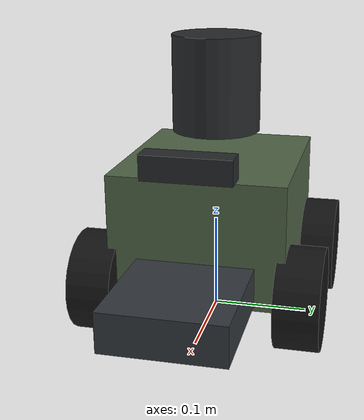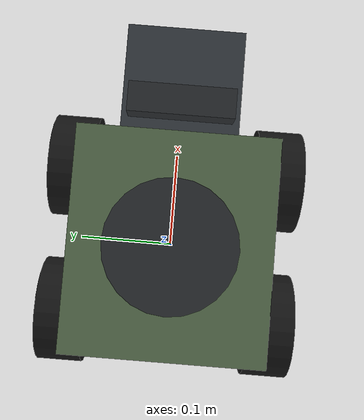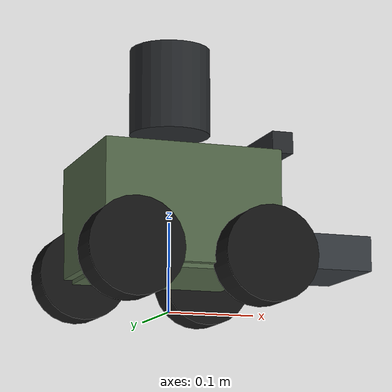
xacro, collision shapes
<?xml version="1.0" encoding="utf-8"?>
<robot name="army_mine_amr" xmlns:xacro="http://www.ros.org/wiki/xacro">

  <!-- ================= MATERIALS ================= -->
  <material name="army_camo_green">
    <color rgba="0.32 0.40 0.28 1.0"/>
  </material>
  <material name="tactical_dark">
    <color rgba="0.15 0.16 0.17 1.0"/>
  </material>
  <material name="wheel_rubber">
    <color rgba="0.08 0.08 0.08 1.0"/>
  </material>
  <material name="sensor_aluminum">
    <color rgba="0.45 0.47 0.50 1.0"/>
  </material>
  <material name="lidar_optical_dome">
    <color rgba="0.05 0.12 0.22 0.95"/>
  </material>
  <material name="laser_emitter_red">
    <color rgba="0.95 0.15 0.15 1.0"/>
  </material>
  <material name="probe_carbon">
    <color rgba="0.20 0.22 0.24 1.0"/>
  </material>

  <!-- ================= BASE FOOTPRINT ================= -->
  <link name="base_footprint"/>

  <joint name="base_joint" type="fixed">
    <parent link="base_footprint"/>
    <child link="base_link"/>
    <origin xyz="0 0 0.033" rpy="0 0 0"/>
  </joint>

  <!-- ================= BASE LINK (CHASSIS) ================= -->
  <link name="base_link">
    <inertial>
      <origin xyz="-0.002 -0.0001 0.045" rpy="0 0 0"/>
      <mass value="3.85"/>
      <inertia ixx="0.0145" ixy="0.00001" ixz="-0.00001"
               iyy="0.0182" iyz="-0.00001" izz="0.0265"/>
    </inertial>
    <visual>
      <origin xyz="0 0 0" rpy="0 0 0"/>
      <geometry>
        <mesh filename="package://army_mine_amr/meshes/base_link.STL"/>
      </geometry>
      <material name="army_camo_green"/>
    </visual>
    <!-- Multi-tier collision geometry for rugged uneven ground clearance -->
    <collision>
      <origin xyz="0 0 0.075" rpy="0 0 0"/>
      <geometry>
        <box size="0.20 0.18 0.13"/>
      </geometry>
    </collision>
    <collision>
      <origin xyz="0 0 0.02" rpy="0 0 0"/>
      <geometry>
        <box size="0.18 0.16 0.03"/>
      </geometry>
    </collision>
  </link>

  <gazebo reference="base_link">
    <material>
      <ambient>0.32 0.40 0.28 1</ambient>
      <diffuse>0.42 0.52 0.38 1</diffuse>
      <specular>0.2 0.2 0.2 1</specular>
    </material>
  </gazebo>

  <!-- ================= FRONT LEFT WHEEL ================= -->
  <link name="fl_wheel_link">
    <inertial>
      <origin xyz="0 0 -0.005" rpy="0 0 0"/>
      <mass value="0.45"/>
      <inertia ixx="0.00035" ixy="0" ixz="0"
               iyy="0.00035" iyz="0" izz="0.00058"/>
    </inertial>
    <visual>
      <origin xyz="0 0 0" rpy="0 0 0"/>
      <geometry>
        <mesh filename="package://army_mine_amr/meshes/lw_link.STL"/>
      </geometry>
      <material name="wheel_rubber"/>
    </visual>
    <collision>
      <origin xyz="0 0 -0.007" rpy="0 0 0"/>
      <geometry>
        <cylinder radius="0.0525" length="0.045"/>
      </geometry>
    </collision>
  </link>

  <joint name="fl_wheel_joint" type="continuous">
    <origin xyz="0.075 0.11086 0.018076" rpy="-1.5708 0 0"/>
    <parent link="base_link"/>
    <child link="fl_wheel_link"/>
    <axis xyz="0 0 1"/>
    <limit effort="50" velocity="20"/>
    <dynamics damping="0.15" friction="0.10"/>
  </joint>

  <gazebo reference="fl_wheel_link">
    <mu1>100.0</mu1>
    <mu2>100.0</mu2>
    <kp>10000000.0</kp>
    <kd>1.0</kd>
    <minDepth>0.005</minDepth>
    <material>
      <ambient>0.1 0.1 0.1 1</ambient>
      <diffuse>0.15 0.15 0.15 1</diffuse>
      <specular>0.1 0.1 0.1 1</specular>
    </material>
  </gazebo>

  <!-- ================= FRONT RIGHT WHEEL ================= -->
  <link name="fr_wheel_link">
    <inertial>
      <origin xyz="0 0 0.005" rpy="0 0 0"/>
      <mass value="0.45"/>
      <inertia ixx="0.00035" ixy="0" ixz="0"
               iyy="0.00035" iyz="0" izz="0.00058"/>
    </inertial>
    <visual>
      <origin xyz="0 0 0" rpy="0 0 0"/>
      <geometry>
        <mesh filename="package://army_mine_amr/meshes/rw_link.STL"/>
      </geometry>
      <material name="wheel_rubber"/>
    </visual>
    <collision>
      <origin xyz="0 0 0.007" rpy="0 0 0"/>
      <geometry>
        <cylinder radius="0.0525" length="0.045"/>
      </geometry>
    </collision>
  </link>

  <joint name="fr_wheel_joint" type="continuous">
    <origin xyz="0.075 -0.11086 0.018076" rpy="-1.5708 0 0"/>
    <parent link="base_link"/>
    <child link="fr_wheel_link"/>
    <axis xyz="0 0 1"/>
    <limit effort="50" velocity="20"/>
    <dynamics damping="0.15" friction="0.10"/>
  </joint>

  <gazebo reference="fr_wheel_link">
    <mu1>100.0</mu1>
    <mu2>100.0</mu2>
    <kp>10000000.0</kp>
    <kd>1.0</kd>
    <minDepth>0.005</minDepth>
    <material>
      <ambient>0.1 0.1 0.1 1</ambient>
      <diffuse>0.15 0.15 0.15 1</diffuse>
      <specular>0.1 0.1 0.1 1</specular>
    </material>
  </gazebo>

  <!-- ================= REAR LEFT WHEEL ================= -->
  <link name="rl_wheel_link">
    <inertial>
      <origin xyz="0 0 -0.005" rpy="0 0 0"/>
      <mass value="0.45"/>
      <inertia ixx="0.00035" ixy="0" ixz="0"
               iyy="0.00035" iyz="0" izz="0.00058"/>
    </inertial>
    <visual>
      <origin xyz="0 0 0" rpy="0 0 0"/>
      <geometry>
        <mesh filename="package://army_mine_amr/meshes/lw_link.STL"/>
      </geometry>
      <material name="wheel_rubber"/>
    </visual>
    <collision>
      <origin xyz="0 0 -0.007" rpy="0 0 0"/>
      <geometry>
        <cylinder radius="0.0525" length="0.045"/>
      </geometry>
    </collision>
  </link>

  <joint name="rl_wheel_joint" type="continuous">
    <origin xyz="-0.075 0.11086 0.018076" rpy="-1.5708 0 0"/>
    <parent link="base_link"/>
    <child link="rl_wheel_link"/>
    <axis xyz="0 0 1"/>
    <limit effort="50" velocity="20"/>
    <dynamics damping="0.15" friction="0.10"/>
  </joint>

  <gazebo reference="rl_wheel_link">
    <mu1>100.0</mu1>
    <mu2>100.0</mu2>
    <kp>10000000.0</kp>
    <kd>1.0</kd>
    <minDepth>0.005</minDepth>
    <material>
      <ambient>0.1 0.1 0.1 1</ambient>
      <diffuse>0.15 0.15 0.15 1</diffuse>
      <specular>0.1 0.1 0.1 1</specular>
    </material>
  </gazebo>

  <!-- ================= REAR RIGHT WHEEL ================= -->
  <link name="rr_wheel_link">
    <inertial>
      <origin xyz="0 0 0.005" rpy="0 0 0"/>
      <mass value="0.45"/>
      <inertia ixx="0.00035" ixy="0" ixz="0"
               iyy="0.00035" iyz="0" izz="0.00058"/>
    </inertial>
    <visual>
      <origin xyz="0 0 0" rpy="0 0 0"/>
      <geometry>
        <mesh filename="package://army_mine_amr/meshes/rw_link.STL"/>
      </geometry>
      <material name="wheel_rubber"/>
    </visual>
    <collision>
      <origin xyz="0 0 0.007" rpy="0 0 0"/>
      <geometry>
        <cylinder radius="0.0525" length="0.045"/>
      </geometry>
    </collision>
  </link>

  <joint name="rr_wheel_joint" type="continuous">
    <origin xyz="-0.075 -0.11086 0.018076" rpy="-1.5708 0 0"/>
    <parent link="base_link"/>
    <child link="rr_wheel_link"/>
    <axis xyz="0 0 1"/>
    <limit effort="50" velocity="20"/>
    <dynamics damping="0.15" friction="0.10"/>
  </joint>

  <gazebo reference="rr_wheel_link">
    <mu1>100.0</mu1>
    <mu2>100.0</mu2>
    <kp>10000000.0</kp>
    <kd>1.0</kd>
    <minDepth>0.005</minDepth>
    <material>
      <ambient>0.1 0.1 0.1 1</ambient>
      <diffuse>0.15 0.15 0.15 1</diffuse>
      <specular>0.1 0.1 0.1 1</specular>
    </material>
  </gazebo>

  <!-- ================= 4D LIDAR SENSOR ON TOP ================= -->
  <!-- 4D LiDAR Riser / Housing -->
  <link name="lidar4d_mount_link">
    <visual>
      <origin xyz="0 0 0" rpy="0 0 0"/>
      <geometry>
        <mesh filename="package://army_mine_amr/meshes/lidar4d.STL"/>
      </geometry>
      <material name="tactical_dark"/>
    </visual>
    <collision>
      <origin xyz="0 0 0.05" rpy="0 0 0"/>
      <geometry>
        <cylinder radius="0.046" length="0.10"/>
      </geometry>
    </collision>
    <inertial>
      <origin xyz="0 0 0.05" rpy="0 0 0"/>
      <mass value="0.25"/>
      <inertia ixx="0.0002" ixy="0" ixz="0"
               iyy="0.0002" iyz="0" izz="0.0003"/>
    </inertial>
  </link>

  <joint name="lidar4d_mount_joint" type="fixed">
    <origin xyz="0.0 0.0 0.168" rpy="0 0 0"/>
    <parent link="base_link"/>
    <child link="lidar4d_mount_link"/>
  </joint>

  <!-- Optical center of 4D LiDAR (emitter/receiver center) -->
  <link name="lidar4d_link"/>

  <joint name="lidar4d_joint" type="fixed">
    <origin xyz="0.0 0.0 0.076" rpy="0 0 0"/>
    <parent link="lidar4d_mount_link"/>
    <child link="lidar4d_link"/>
  </joint>

  <!-- Gazebo Sim 4D GPU LiDAR Sensor -->
  <gazebo reference="lidar4d_link">
    <sensor name="lidar4d" type="gpu_lidar">
      <pose>0 0 0 0 0 0</pose>
      <always_on>true</always_on>
      <update_rate>15.0</update_rate>
      <visualize>false</visualize>
      <topic>/scan</topic>
      <gz_frame_id>lidar4d_link</gz_frame_id>
      <lidar>
        <scan>
          <horizontal>
            <samples>720</samples>
            <resolution>1</resolution>
            <min_angle>-3.14159265</min_angle>
            <max_angle>3.14159265</max_angle>
          </horizontal>
          <vertical>
            <samples>16</samples>
            <resolution>1</resolution>
            <min_angle>-0.261799</min_angle>
            <max_angle>0.261799</max_angle>
          </vertical>
        </scan>
        <range>
          <min>0.15</min>
          <max>40.0</max>
          <resolution>0.01</resolution>
        </range>
        <noise>
          <type>gaussian</type>
          <mean>0.0</mean>
          <stddev>0.008</stddev>
        </noise>
      </lidar>
    </sensor>
  </gazebo>

  <!-- ================= IMU SENSOR ================= -->
  <link name="imu_link">
    <inertial>
      <origin xyz="0 0 0" rpy="0 0 0"/>
      <mass value="0.02"/>
      <inertia ixx="0.000001" ixy="0" ixz="0"
               iyy="0.000001" iyz="0" izz="0.000001"/>
    </inertial>
  </link>

  <joint name="imu_joint" type="fixed">
    <origin xyz="0.0 0.0 0.05" rpy="0 0 0"/>
    <parent link="base_link"/>
    <child link="imu_link"/>
  </joint>

  <gazebo reference="imu_link">
    <sensor name="imu_sensor" type="imu">
      <always_on>true</always_on>
      <update_rate>100</update_rate>
      <visualize>false</visualize>
      <topic>/imu/data</topic>
      <gz_frame_id>imu_link</gz_frame_id>
    </sensor>
  </gazebo>

  <!-- ================= MINE DETECTION & DEFUSAL PROBE ================= -->
  <link name="mine_probe_link">
    <visual>
      <origin xyz="0 0 0" rpy="0 0 0"/>
      <geometry>
        <mesh filename="package://army_mine_amr/meshes/mine_probe.STL"/>
      </geometry>
      <material name="probe_carbon"/>
    </visual>
    <collision>
      <origin xyz="0.06 0 0" rpy="0 0 0"/>
      <geometry>
        <box size="0.12 0.12 0.04"/>
      </geometry>
    </collision>
    <inertial>
      <origin xyz="0.05 0 0" rpy="0 0 0"/>
      <mass value="0.18"/>
      <inertia ixx="0.0001" ixy="0" ixz="0"
               iyy="0.0001" iyz="0" izz="0.0001"/>
    </inertial>
  </link>

  <joint name="mine_probe_joint" type="fixed">
    <origin xyz="0.100 0.0 0.035" rpy="0 0 0"/>
    <parent link="base_link"/>
    <child link="mine_probe_link"/>
  </joint>

  <!-- ================= TACTICAL RGB-D DEPTH CAMERA (Intel RealSense D435) ================= -->
  <link name="camera_link">
    <visual>
      <origin rpy="0 0 0" xyz="0 0 0"/>
      <geometry>
        <box size="0.025 0.090 0.025"/>
      </geometry>
      <material name="tactical_dark"/>
    </visual>
    <visual>
      <origin rpy="0 1.5707963 0" xyz="0.013 0 0"/>
      <geometry>
        <cylinder length="0.003" radius="0.006"/>
      </geometry>
      <material name="lidar_optical_dome"/>
    </visual>
    <visual>
      <origin rpy="0 1.5707963 0" xyz="0.013 0.028 0"/>
      <geometry>
        <cylinder length="0.003" radius="0.005"/>
      </geometry>
      <material name="laser_emitter_red"/>
    </visual>
    <visual>
      <origin rpy="0 1.5707963 0" xyz="0.013 -0.028 0"/>
      <geometry>
        <cylinder length="0.003" radius="0.005"/>
      </geometry>
      <material name="laser_emitter_red"/>
    </visual>
    <collision>
      <origin rpy="0 0 0" xyz="0 0 0"/>
      <geometry>
        <box size="0.025 0.090 0.025"/>
      </geometry>
    </collision>
    <inertial>
      <origin rpy="0 0 0" xyz="0 0 0"/>
      <mass value="0.072"/>
      <inertia ixx="0.00004" ixy="0" ixz="0" iyy="0.00001" iyz="0" izz="0.00004"/>
    </inertial>
  </link>

  <joint name="camera_joint" type="fixed">
    <origin rpy="0 0 0" xyz="0.12 0.0 0.16"/>
    <parent link="base_link"/>
    <child link="camera_link"/>
  </joint>

  <!-- Standard ROS optical frame convention (+Z out lens, +X right, +Y down) -->
  <link name="camera_depth_optical_frame"/>
  <joint name="camera_depth_optical_joint" type="fixed">
    <origin rpy="-1.5707963 0 -1.5707963" xyz="0 0 0"/>
    <parent link="camera_link"/>
    <child link="camera_depth_optical_frame"/>
  </joint>

  <gazebo reference="camera_link">
    <sensor name="depth_camera" type="rgbd_camera">
      <always_on>true</always_on>
      <update_rate>20</update_rate>
      <visualize>true</visualize>
      <topic>/camera</topic>
      <gz_frame_id>camera_link</gz_frame_id>
      <camera>
        <horizontal_fov>1.5184</horizontal_fov>
        <image>
          <width>640</width>
          <height>480</height>
          <format>RGB_INT8</format>
        </image>
        <clip>
          <near>0.15</near>
          <far>15.0</far>
        </clip>
        <depth_camera>
          <clip>
            <near>0.15</near>
            <far>15.0</far>
          </clip>
        </depth_camera>
        <noise>
          <type>gaussian</type>
          <mean>0.0</mean>
          <stddev>0.005</stddev>
        </noise>
      </camera>
    </sensor>
  </gazebo>

  <!-- ================= GAZEBO SIM SIMULATION PLUGINS ================= -->
  <gazebo>
    <!-- 4-Wheel Skid-Steer Differential Drive on Uneven Terrain -->
    <plugin filename="libignition-gazebo-diff-drive-system.so"
            name="ignition::gazebo::systems::DiffDrive">
      <left_joint>fl_wheel_joint</left_joint>
      <left_joint>rl_wheel_joint</left_joint>
      <right_joint>fr_wheel_joint</right_joint>
      <right_joint>rr_wheel_joint</right_joint>
      <wheel_separation>0.22172</wheel_separation>
      <wheel_radius>0.0525</wheel_radius>
      <odom_publish_frequency>50</odom_publish_frequency>
      <max_wheel_torque>60.0</max_wheel_torque>
      <max_wheel_acceleration>15.0</max_wheel_acceleration>
      <max_linear_acceleration>5.0</max_linear_acceleration>
      <min_linear_acceleration>-5.0</min_linear_acceleration>
      <max_angular_acceleration>6.0</max_angular_acceleration>
      <min_angular_acceleration>-6.0</min_angular_acceleration>
      <max_linear_velocity>2.0</max_linear_velocity>
      <min_linear_velocity>-2.0</min_linear_velocity>
      <max_angular_velocity>3.5</max_angular_velocity>
      <min_angular_velocity>-3.5</min_angular_velocity>
      <topic>/cmd_vel</topic>
      <odom_topic>/odom</odom_topic>
      <tf_topic>/tf</tf_topic>
      <frame_id>odom</frame_id>
      <child_frame_id>base_footprint</child_frame_id>
    </plugin>

    <!-- Joint State Publisher for 4 Wheels -->
    <plugin filename="libignition-gazebo-joint-state-publisher-system.so"
            name="ignition::gazebo::systems::JointStatePublisher">
      <topic>/joint_states</topic>
      <joint_name>fl_wheel_joint</joint_name>
      <joint_name>fr_wheel_joint</joint_name>
      <joint_name>rl_wheel_joint</joint_name>
      <joint_name>rr_wheel_joint</joint_name>
    </plugin>

    <!-- Sensor Rendering Plugin -->
    <plugin filename="libignition-gazebo-sensors-system.so"
            name="ignition::gazebo::systems::Sensors">
      <render_engine>ogre2</render_engine>
    </plugin>

    <!-- IMU System Plugin -->
    <plugin filename="libignition-gazebo-imu-system.so"
            name="ignition::gazebo::systems::Imu">
    </plugin>
  </gazebo>

</robot>
